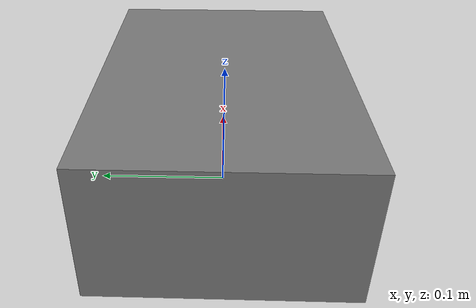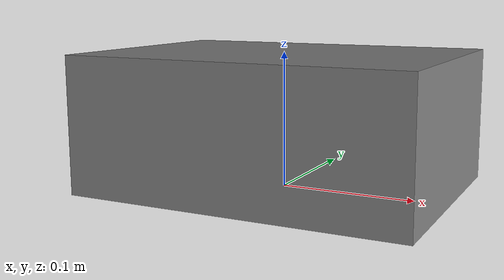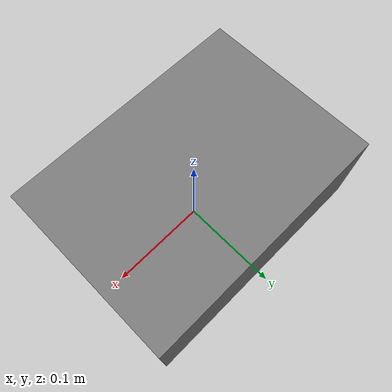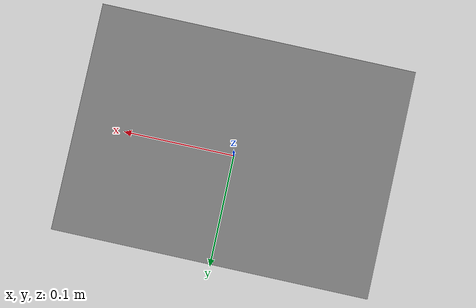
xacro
<?xml version="1.0"?>
<robot xmlns:xacro="http://www.ros.org/wiki/xacro" name="alpha_viam_rover">
  <!-- Minimal URDF/Xacro for TF and diff-drive semantics. Dimensions are placeholders. -->

  <!-- Parameters -->
  <xacro:property name="wheel_separation" value="0.30"/>
  <xacro:property name="wheel_radius" value="0.06"/>

  <!-- Base with simple geometry/inertial -->
  <link name="base_link">
    <inertial>
      <origin xyz="0 0 0" rpy="0 0 0"/>
      <mass value="2.0"/>
      <inertia ixx="0.02" ixy="0.0" ixz="0.0" iyy="0.02" iyz="0.0" izz="0.04"/>
    </inertial>
    <visual>
      <origin xyz="0 0 0.05" rpy="0 0 0"/>
      <geometry>
        <box size="0.25 0.18 0.10"/>
      </geometry>
      <material name="grey">
        <color rgba="0.5 0.5 0.5 1.0"/>
      </material>
    </visual>
    <collision>
      <origin xyz="0 0 0.05" rpy="0 0 0"/>
      <geometry>
        <box size="0.25 0.18 0.10"/>
      </geometry>
    </collision>
  </link>

  <!-- Wheels -->
  <link name="left_wheel_link"/>
  <link name="right_wheel_link"/>

  <joint name="left_wheel_joint" type="continuous">
    <parent link="base_link"/>
    <child link="left_wheel_link"/>
    <origin xyz="0 ${wheel_separation/2.0} 0" rpy="0 0 0"/>
    <axis xyz="0 1 0"/>
  </joint>

  <joint name="right_wheel_joint" type="continuous">
    <parent link="base_link"/>
    <child link="right_wheel_link"/>
    <origin xyz="0 ${-wheel_separation/2.0} 0" rpy="0 0 0"/>
    <axis xyz="0 1 0"/>
  </joint>

  <!-- Sensors -->
  <link name="imu_link"/>
  <joint name="imu_joint" type="fixed">
    <parent link="base_link"/>
    <child link="imu_link"/>
    <origin xyz="0 0 0.05" rpy="0 0 0"/>
  </joint>

  <link name="lidar_link"/>
  <joint name="lidar_joint" type="fixed">
    <parent link="base_link"/>
    <child link="lidar_link"/>
    <origin xyz="0.10 0 0.08" rpy="0 0 0"/>
  </joint>

  <!-- ros2_control: system + joint interfaces (placeholders for real hardware) -->
  <ros2_control name="RoverSystem" type="system">
    <hardware>
      <plugin>l298n_hardware/L298NSystemHardware</plugin>
      <!-- L298N pin map (BCM numbering) and encoder pins -->
      <param name="left_pwm">26</param>
      <param name="left_in1">19</param>
      <param name="left_in2">13</param>
      <param name="right_pwm">22</param>
      <param name="right_in3">6</param>
      <param name="right_in4">5</param>
      <!-- Encoders: single-channel signals on BCM GPIOs -->
      <param name="left_enc_a">20</param>
      <param name="left_enc_b">-1</param>
      <param name="right_enc_a">21</param>
      <param name="right_enc_b">-1</param>
      <!-- Encoder + control params -->
      <!-- Measured: 0.5 physical rev = 15.48 rad reported with 192 ticks
           Correction factor: 15.48 / 3.14159 = 4.93x
           New value: 192 * 4.93 = 946 (likely 5:1 gear ratio in motors) -->
      <param name="ticks_per_rev">946</param>
      <param name="encoder_glitch_us">100</param>
      <param name="use_speed_control">true</param>
      <param name="speed_kp">6.0</param>
      <param name="speed_ki">12.0</param>
      <param name="speed_i_max">120.0</param>
      <param name="max_wheel_rad_s">20.0</param>
      <param name="pwm_freq">20000</param>
      <param name="pwm_range">255</param>
      <param name="deadband_rad_s">0.10</param>
      <param name="slew_duty_per_s">200.0</param>
      <param name="invert_left">false</param>
      <param name="invert_right">false</param>
      <param name="brake_on_zero">false</param>
      <param name="watchdog_s">0.5</param>
      <param name="debug">true</param>
    </hardware>
    <joint name="left_wheel_joint">
      <command_interface name="velocity"/>
      <state_interface name="position"/>
      <state_interface name="velocity"/>
    </joint>
    <joint name="right_wheel_joint">
      <command_interface name="velocity"/>
      <state_interface name="position"/>
      <state_interface name="velocity"/>
    </joint>
  </ros2_control>

  <!-- Optional transmissions for tooling compatibility (placeholder) -->
  <transmission name="left_wheel_transmission">
    <type>transmission_interface/SimpleTransmission</type>
    <joint name="left_wheel_joint">
      <hardwareInterface>hardware_interface/VelocityJointInterface</hardwareInterface>
    </joint>
    <actuator name="left_motor">
      <hardwareInterface>hardware_interface/VelocityJointInterface</hardwareInterface>
      <mechanicalReduction>1.0</mechanicalReduction>
    </actuator>
  </transmission>

  <transmission name="right_wheel_transmission">
    <type>transmission_interface/SimpleTransmission</type>
    <joint name="right_wheel_joint">
      <hardwareInterface>hardware_interface/VelocityJointInterface</hardwareInterface>
    </joint>
    <actuator name="right_motor">
      <hardwareInterface>hardware_interface/VelocityJointInterface</hardwareInterface>
      <mechanicalReduction>1.0</mechanicalReduction>
    </actuator>
  </transmission>

</robot>
